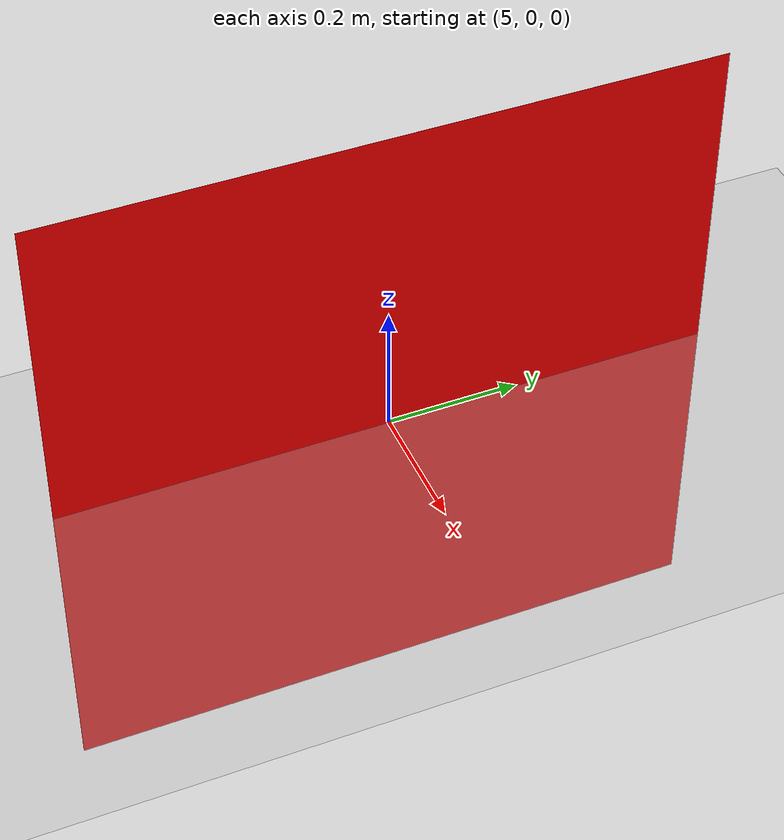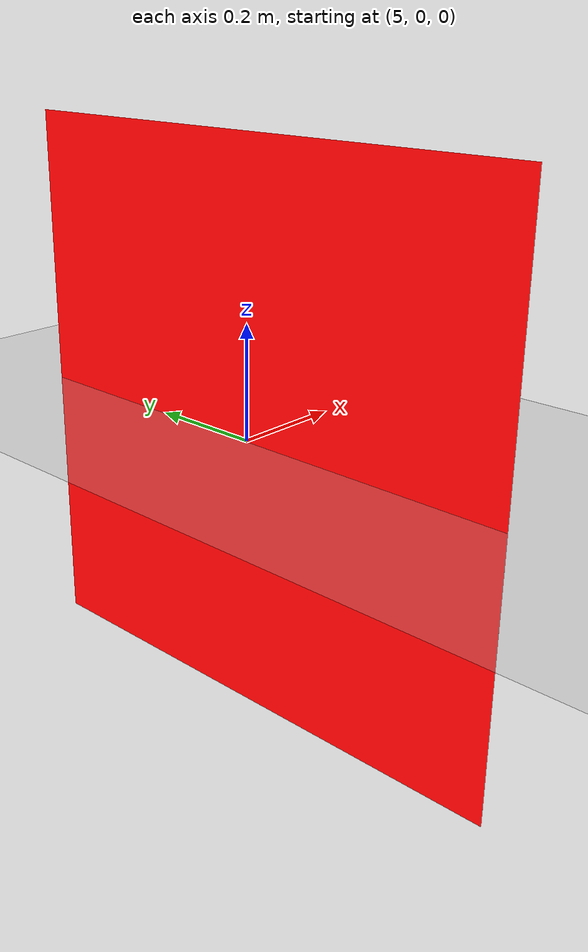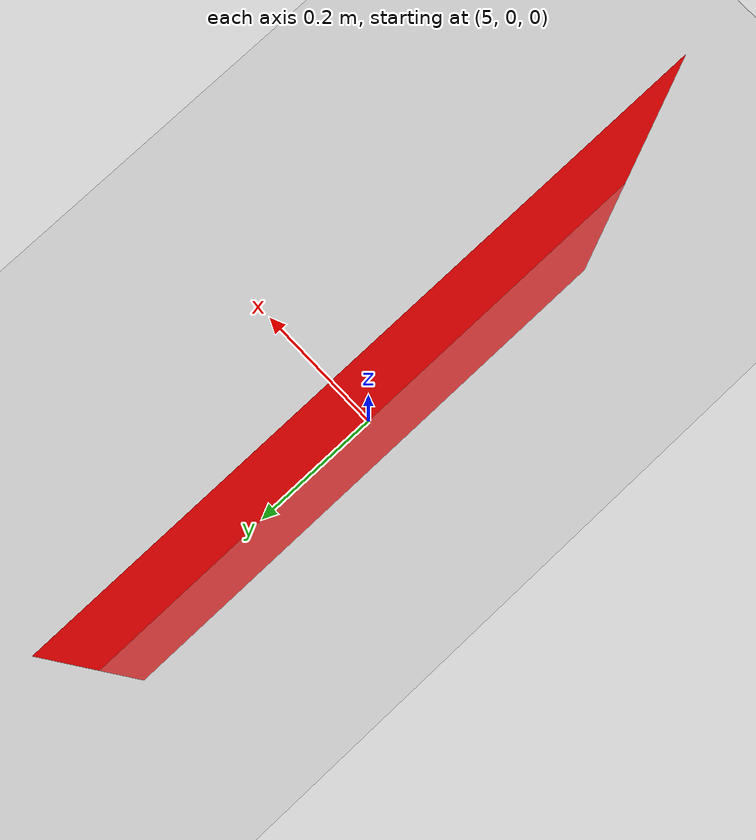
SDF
<?xml version="1.0" ?>
<sdf version="1.5">
  <world name="default">
    <scene>
      <ambient>0.7 0.7 0.7 1</ambient>
      <background>0.1 0.1 0.1 1</background>
    </scene>

    <include>
      <uri>model://sun</uri>
    </include>

    <include>
      <uri>model://ground_plane</uri>
    </include>

    <model name="ColorModel">
      <static>true</static>
      <link name="link3">
        <pose>5 0 0 0 0 0</pose>
        <collision name="body_collision">
          <geometry>
            <box>
              <size>0.5 0.5 0.5</size>
            </box>
          </geometry>
        </collision>
        <visual name="body_visual">
          <material>
            <ambient>1 1 0 1</ambient>
            <diffuse>1 0 0 1</diffuse>
            <specular>0 0 0 1</specular>
            <emissive>0 0 0 1</emissive>
            </material>
          <geometry>
            <box>
              <size>0.00001 1.0 1.0</size>
            </box>
          </geometry>
        </visual>
      </link>
    </model>
  </world>
</sdf>
